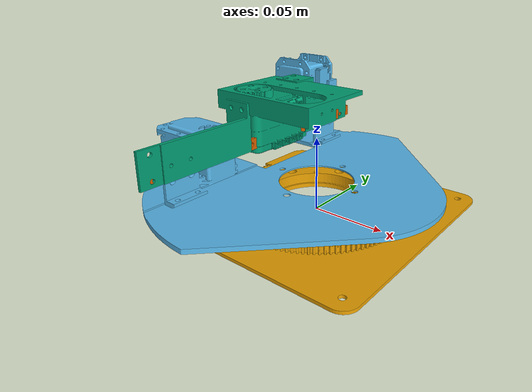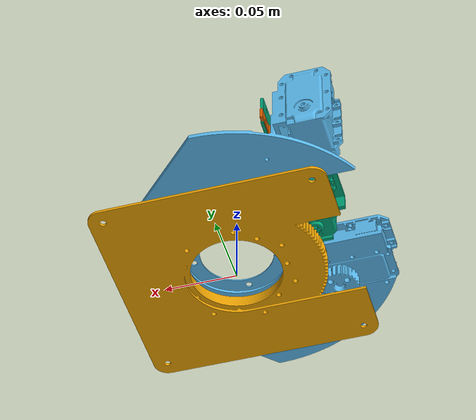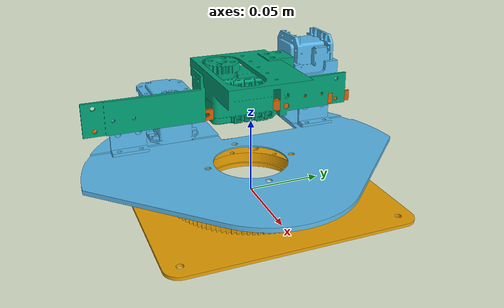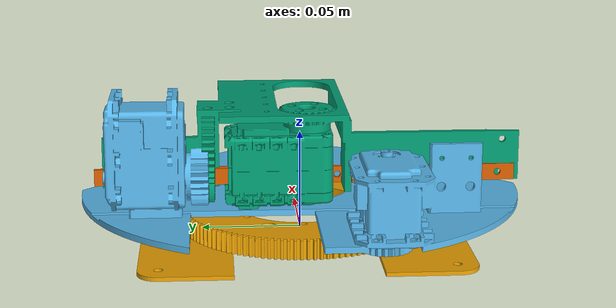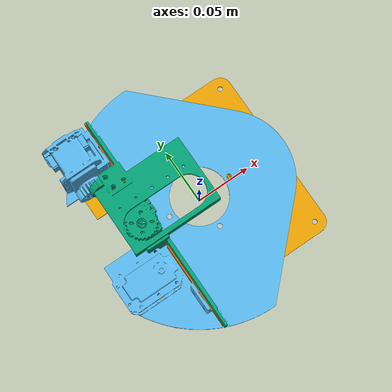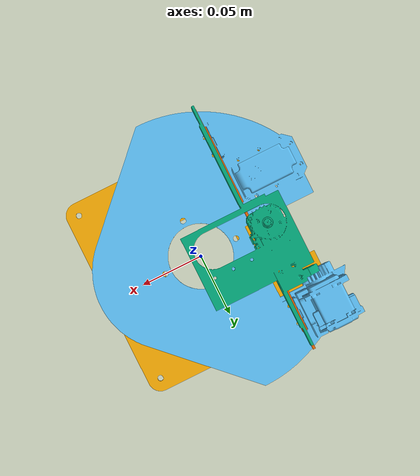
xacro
<?xml version="1.0"?>
<robot name="newrobo" xmlns:xacro="http://www.ros.org/wiki/xacro">
	<xacro:include filename="$(find xacro)/define.xacro" />
	<xacro:include filename="$(find shinobi_newrobo_display)/robot/config.xacro" />
	<xacro:include filename="$(find shinobi_newrobo_display)/robot/armjack_left_macro.xacro" />
	<xacro:include filename="$(find shinobi_newrobo_display)/robot/armjack_right_macro.xacro" />

	<!-- ARM BASE -->
	<link name="arm_base">
		<visual>
			<origin rpy="0 0 0"	xyz="0 0 0"/>
			<geometry>
				<mesh filename="${robotPackagePath}/${modelDataResourseFolder}/arm_base.stl"/>
			</geometry>
		</visual>
	</link>

  <joint name="joint_arm_yaw" type="revolute">
    <axis xyz="0 0 1"/>
    <limit 	lower="${DEG2RAD*armYawAngle_min}" effort="1000.0"
						upper="${DEG2RAD*armYawAngle_max}" velocity="0.5"/>
    <origin rpy="0 0 0"
						xyz="0 0 ${armYawStage_fromBodyTop}"/>
    <parent link="arm_base"/>
    <child link="arm_yaw"/>
  </joint>

	<link name="arm_yaw">
		<visual>
			<origin rpy="0 0 0"
							xyz="0 0 0"/>
			<geometry>
				<mesh filename="${robotPackagePath}/${modelDataResourseFolder}/arm_yaw.stl"/>
			</geometry>
		</visual>
	</link>

  <joint name="joint_arm_pitch" type="revolute">
    <axis xyz="0 1 0"/>
    <limit 	lower="${DEG2RAD*armPitchAngle_min}" effort="1000.0"
						upper="${DEG2RAD*armPitchAngle_max}" velocity="0.5"/>
    <origin rpy="0 0 0"
						xyz="${-armPitchAxis_fromYawAxis} 0 ${armPitchAxis_fromYawStage}"/>
    <parent link="arm_yaw"/>
    <child link="arm_pitch"/>
  </joint>

	<link name="arm_pitch">
		<visual>
			<origin rpy="0 0 0"
							xyz="${-armLinearAxis_fromPitchAxis}
									0
									${-armPitchAxis_fromYawStage + armLinearAxis_fromYawStage}"/>
			<geometry>
				<mesh filename="${robotPackagePath}/${modelDataResourseFolder}/arm_pitch.stl"/>
			</geometry>
		</visual>
	</link>

	<!-- ARM BELLOWS -->
  <joint name="virtualjoint_arm_bellows_base" type="fixed">
    <origin rpy="0 0 0" xyz="0 0 ${-armLinearBase_ArmLinearAxis}"/>
    <parent link="arm_pitch"/>
    <child link="arm_linear_frame_base"/>
  </joint>

	<link name="arm_linear_frame_base">
			<origin rpy="0 0 0" xyz="0 0 0"/>
	</link>

	<!-- right -->
  <joint name="virtualJoint_armLinear_base_right" type="prismatic">
    <axis xyz="0 1 0"/>
    <limit 	lower="${DEG2RAD*armYawAngle_min}" effort="1000.0"
						upper="${DEG2RAD*armYawAngle_max}" velocity="0.5"/>
    <origin rpy="0 0 0" xyz="0 ${-armLinear_frame_length/2.0} 0"/>
    <parent link="arm_linear_frame_base"/>
    <child link="virtualLink_armLinear_base_right"/>
  </joint>

	<link name="virtualLink_armLinear_base_right">
		<origin rpy="0 0 0"	xyz="0 0 0"/>
	</link>

	<xacro:armjack_right parent="virtualLink_armLinear_base_right" suffix="1" />
	<xacro:armjack_right parent="${arm_linear_frame_right_B}_1" suffix="2" />
	<xacro:armjack_right parent="${arm_linear_frame_right_B}_2" suffix="3" />
	<xacro:armjack_right parent="${arm_linear_frame_right_B}_3" suffix="4" />

	<!-- left -->
  <joint name="virtualJoint_armLinear_base_left" type="prismatic">
    <axis xyz="0 1 0"/>
    <limit 	lower="${DEG2RAD*armYawAngle_min}" effort="1000.0"
						upper="${DEG2RAD*armYawAngle_max}" velocity="0.5"/>
    <origin rpy="0 0 0" xyz="0 ${armLinear_frame_length/2.0} 0"/>
    <parent link="arm_linear_frame_base"/>
    <child link="virtualLink_armLinear_base_left"/>
  </joint>

	<link name="virtualLink_armLinear_base_left">
		<origin rpy="0 0 0"	xyz="0 0 0"/>
	</link>

	<xacro:armjack_left parent="virtualLink_armLinear_base_left" suffix="1" />
	<xacro:armjack_left parent="${arm_linear_frame_left_B}_1" suffix="2" />
	<xacro:armjack_left parent="${arm_linear_frame_left_B}_2" suffix="3" />
	<xacro:armjack_left parent="${arm_linear_frame_left_B}_3" suffix="4" />

</robot>

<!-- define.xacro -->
<robot>

	<property name="PI" 		value= "3.141592653" />
	<property name="DEG2RAD" 	value= "0.017453293" />
	<property name="RAD2DEG" 	value="57.295779513" />

</robot>

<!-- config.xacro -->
<robot>

	<property name="robotPackagePath" value="package://shinobi_newrobo_display/robot"/>
	<property name="modelDataResourseFolder" value="newRobotStls"/>

	<property name="bodyFront_depth" 	value="0.262" />
  <property name="bodyFront_height" value="0.072" />
  <property name="bodyFront_width" 	value="0.262" />

	<property name="bodyPitchAngle_max"	value=  "0" />
	<property name="bodyPitchAngle_min"	value="-90" />

	<property name="bodyLink_length" value="0.038" />

  <property name="bodyBack_depth" 	value="0.112" />
  <property name="bodyBack_height" 	value="0.072" />
  <property name="bodyBack_width" 	value="0.340" />

  <property name="starWheel_width" 	value="0.018" />
  <property name="starWheel_radius" value="0.134" />
  <property name="starWheelAxis_radius" value="0.134" />

	<property name="frontwheelAxis_fromBodyCenter" value="0.070" />
  <property name="backwheelAxis_fromBodyCenter" value="-0.100" />
	<property name="frontwheel_tread" value="0.372"/> <!-- from outside to outside -->
  <property name="backwheel_tread" value="0.386"/> <!-- from outside to outside -->

  <property name="flipper_width" 		value="0.025" />
  <property name="flipper_length" 	value="0.178" />
  <property name="flipper_tread" 	value="0.320" /> <!-- from outside to outside -->

  <property name="flipperBigPulley_radius" value="0.032" />
  <property name="flipperAngle_max" value= "90" />
  <property name="flipperAngle_min" value="-90" />
  <property name="flipperAxis_fromBodyCenter" value="0.070" />
  <property name="flipperOffset_fromBodySide" value="0.010" />

	<property name="armYawAngle_max"	value= "90" />
	<property name="armYawAngle_min"	value="-90" />
	<property name="armPitchAngle_max"	value= "90" />
	<property name="armPitchAngle_min"	value="-90" />

  <property name="armBase_fromBodyCenter_X" value="0.040" />
  <property name="armYawStage_fromBodyTop" value="0.020" />
  <property name="armPitchAxis_fromYawAxis" value="0.045" />
  <property name="armPitchAxis_fromYawStage" value="0.045" />
  <property name="armLinearAxis_fromPitchAxis" value="0.010" />
  <property name="armLinearAxis_fromYawStage" value="0.055" />

	<property name="armLinearBase_ArmLinearAxis" value="0.025" />

  <property name="armLinear_frame_length" value="0.200" />

  <property name="arm_linear_frame_left_A" value="arm_linear_frame_left_A" />
  <property name="arm_linear_frame_left_B" value="arm_linear_frame_left_B" />
  <property name="joint_armLinear_left_A" value="joint_armLinear_left_A" />
  <property name="joint_armLinear_left_B" value="joint_armLinear_left_B" />
  <property name="joint_armLinear_left_C" value="joint_armLinear_left_C" />

  <property name="arm_linear_frame_right_A" value="arm_linear_frame_right_A" />
  <property name="arm_linear_frame_right_B" value="arm_linear_frame_right_B" />
  <property name="joint_armLinear_right_A" value="joint_armLinear_right_A" />
  <property name="joint_armLinear_right_B" value="joint_armLinear_right_B" />
  <property name="joint_armLinear_right_C" value="joint_armLinear_right_C" />

</robot>

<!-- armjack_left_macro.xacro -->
<robot xmlns:xacro="http://www.ros.org/wiki/xacro">
	<xacro:include filename="$(find shinobi_newrobo_display)/robot/config.xacro" />

	<xacro:macro 	name="armjack_left"
								params="parent suffix">

  <joint name="${joint_armLinear_left_A}_${suffix}" type="revolute">
    <axis xyz="0 0 1"/>
    <limit 	lower="${DEG2RAD*armYawAngle_min}" effort="1000.0"
						upper="${DEG2RAD*armYawAngle_max}" velocity="0.5"/>
    <origin rpy="0 0 0"
						xyz="0 ${-armLinear_frame_length} 0"/>
    <parent link="${parent}"/>
    <child link="${arm_linear_frame_left_A}_${suffix}"/>
  </joint>

	<link name="${arm_linear_frame_left_A}_${suffix}">
		<visual>
			<origin rpy="0 0 0"
							xyz="0 ${armLinear_frame_length/2.0} 0"/>
			<geometry>
				<mesh filename="${robotPackagePath}/${modelDataResourseFolder}/arm_linear_frame.stl"/>
			</geometry>
		</visual>
	</link>

  <joint name="${joint_armLinear_left_B}_${suffix}" type="revolute">
    <axis xyz="0 0 1"/>
    <limit 	lower="${DEG2RAD*armYawAngle_min}" effort="1000.0"
						upper="${DEG2RAD*armYawAngle_max}" velocity="0.5"/>
    <origin rpy="0 0 0"
						xyz="0 ${armLinear_frame_length} 0"/>
    <parent link="${arm_linear_frame_left_A}_${suffix}"/>
    <child link="${arm_linear_frame_left_B}_${suffix}"/>
  </joint>

	<link name="${arm_linear_frame_left_B}_${suffix}">
		<visual>
			<origin rpy="0 0 0"
							xyz="0 ${-armLinear_frame_length/2.0} 0"/>
			<geometry>
				<mesh filename="${robotPackagePath}/${modelDataResourseFolder}/arm_linear_frame.stl"/>
			</geometry>
		</visual>
	</link>
	</xacro:macro>
</robot>

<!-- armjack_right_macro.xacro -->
<robot xmlns:xacro="http://www.ros.org/wiki/xacro">
	<xacro:include filename="$(find shinobi_newrobo_display)/robot/config.xacro" />

	<xacro:macro 	name="armjack_right"
								params="parent suffix">

  <joint name="${joint_armLinear_right_A}_${suffix}" type="revolute">
    <axis xyz="0 0 1"/>
    <limit 	lower="${DEG2RAD*armYawAngle_min}" effort="1000.0"
						upper="${DEG2RAD*armYawAngle_max}" velocity="0.5"/>
    <origin rpy="0 0 0"
						xyz="0 ${armLinear_frame_length} 0"/>
    <parent link="${parent}"/>
    <child link="${arm_linear_frame_right_A}_${suffix}"/>
  </joint>

	<link name="${arm_linear_frame_right_A}_${suffix}">
		<visual>
			<origin rpy="0 0 0"
							xyz="0 ${-armLinear_frame_length/2.0} 0"/>
			<geometry>
				<mesh filename="${robotPackagePath}/${modelDataResourseFolder}/arm_linear_frame.stl"/>
			</geometry>
		</visual>
	</link>

  <joint name="${joint_armLinear_right_B}_${suffix}" type="revolute">
    <axis xyz="0 0 1"/>
    <limit 	lower="${DEG2RAD*armYawAngle_min}" effort="1000.0"
						upper="${DEG2RAD*armYawAngle_max}" velocity="0.5"/>
    <origin rpy="0 0 0"
						xyz="0 ${-armLinear_frame_length} 0"/>
    <parent link="${arm_linear_frame_right_A}_${suffix}"/>
    <child link="${arm_linear_frame_right_B}_${suffix}"/>
  </joint>

	<link name="${arm_linear_frame_right_B}_${suffix}">
		<visual>
			<origin rpy="0 0 0"
							xyz="0 ${armLinear_frame_length/2.0} 0"/>
			<geometry>
				<mesh filename="${robotPackagePath}/${modelDataResourseFolder}/arm_linear_frame.stl"/>
			</geometry>
		</visual>
	</link>
	</xacro:macro>
</robot>
